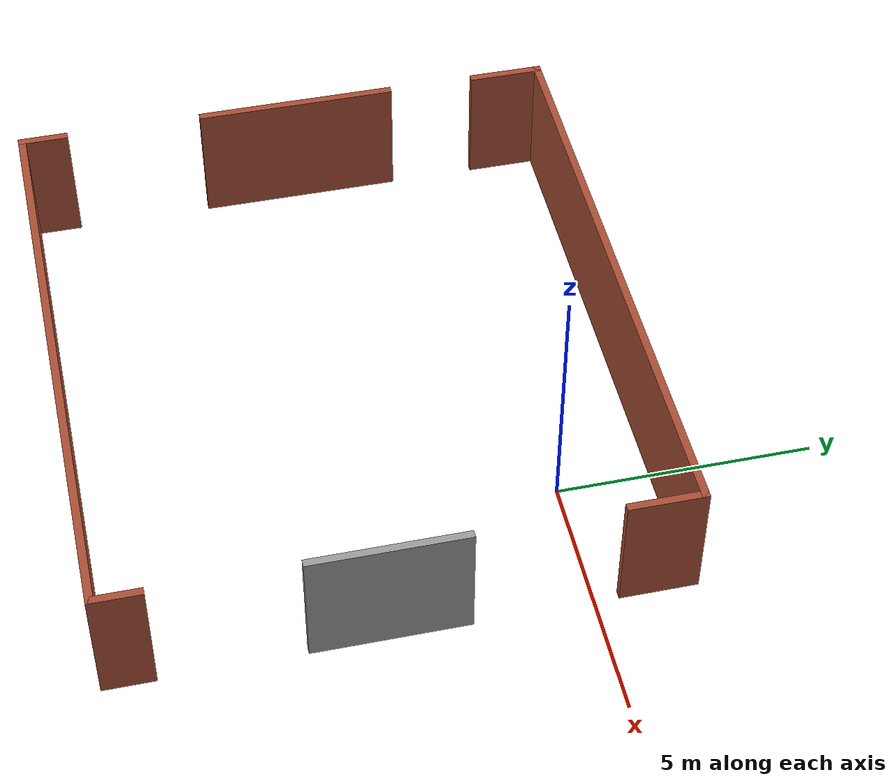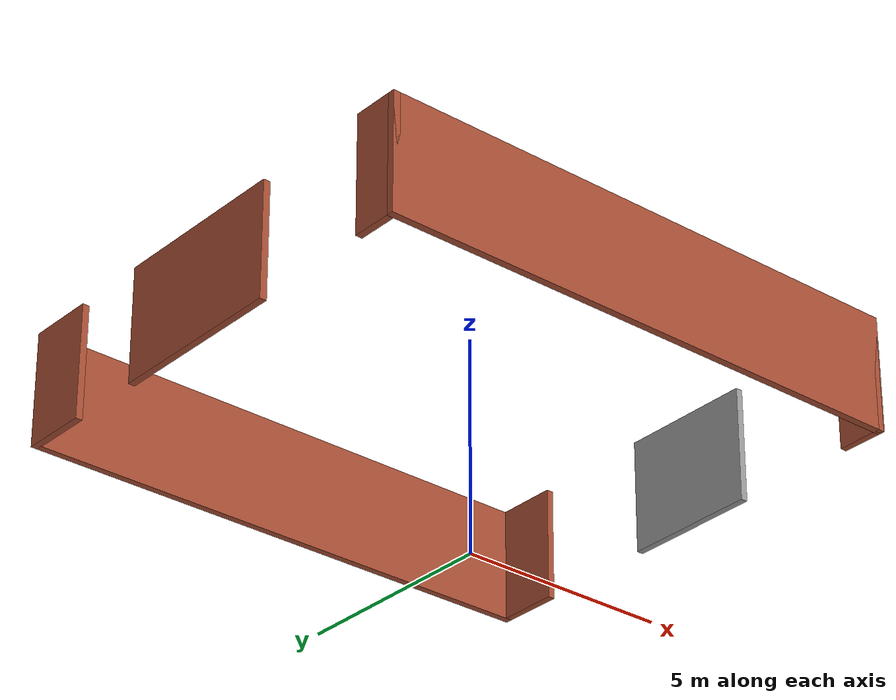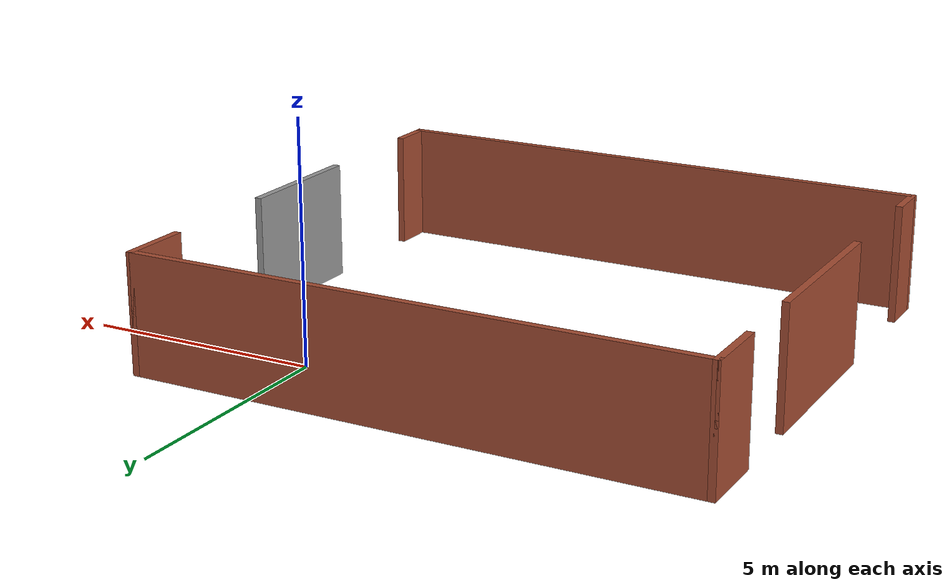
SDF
<?xml version='1.0'?>
<sdf version='1.7'>
  <model name='little_room_doors'>
    <pose>-3.33018 -3.48951 0 0 -0 0</pose>
    <link name='Wall_1'>
      <collision name='Wall_1_Collision'>
        <geometry>
          <box>
            <size>12 0.15 2.5</size>
          </box>
        </geometry>
        <pose>0 0 1.25 0 -0 0</pose>
      </collision>
      <visual name='Wall_1_Visual'>
        <pose>0 0 1.25 0 -0 0</pose>
        <geometry>
          <box>
            <size>12 0.15 2.5</size>
          </box>
        </geometry>
        <material>
          <script>
            <uri>file://media/materials/scripts/gazebo.material</uri>
            <name>Gazebo/Bricks</name>
          </script>
          <ambient>1 1 1 1</ambient>
        </material>
        <meta>
          <layer>0</layer>
        </meta>
      </visual>
      <pose>0 -5.375 0 0 -0 0</pose>
    </link>
    <link name='Wall_11'>
      <collision name='Wall_11_Collision'>
        <geometry>
          <box>
            <size>4 0.15 2.5</size>
          </box>
        </geometry>
        <pose>0 0 1.25 0 -0 0</pose>
      </collision>
      <visual name='Wall_11_Visual'>
        <pose>0 0 1.25 0 -0 0</pose>
        <geometry>
          <box>
            <size>4 0.15 2.5</size>
          </box>
        </geometry>
        <material>
          <script>
            <uri>file://media/materials/scripts/gazebo.material</uri>
            <name>Gazebo/Bricks</name>
          </script>
          <ambient>1 1 1 1</ambient>
        </material>
        <meta>
          <layer>0</layer>
        </meta>
      </visual>
      <pose>-5.925 0.25 0 0 -0 1.5708</pose>
    </link>
    <link name='Wall_14'>
      <collision name='Wall_14_Collision'>
        <geometry>
          <box>
            <size>1.5 0.15 2.5</size>
          </box>
        </geometry>
        <pose>0 0 1.25 0 -0 0</pose>
      </collision>
      <visual name='Wall_14_Visual'>
        <pose>0 0 1.25 0 -0 0</pose>
        <geometry>
          <box>
            <size>1.5 0.15 2.5</size>
          </box>
        </geometry>
        <material>
          <script>
            <uri>file://media/materials/scripts/gazebo.material</uri>
            <name>Gazebo/Bricks</name>
          </script>
          <ambient>1 1 1 1</ambient>
        </material>
        <meta>
          <layer>0</layer>
        </meta>
      </visual>
      <pose>-5.925 4.7 0 0 -0 1.5708</pose>
    </link>
    <link name='Wall_15'>
      <collision name='Wall_15_Collision'>
        <geometry>
          <box>
            <size>12 0.15 2.5</size>
          </box>
        </geometry>
        <pose>0 0 1.25 0 -0 0</pose>
      </collision>
      <visual name='Wall_15_Visual'>
        <pose>0 0 1.25 0 -0 0</pose>
        <geometry>
          <box>
            <size>12 0.15 2.5</size>
          </box>
        </geometry>
        <material>
          <script>
            <uri>file://media/materials/scripts/gazebo.material</uri>
            <name>Gazebo/Bricks</name>
          </script>
          <ambient>1 1 1 1</ambient>
        </material>
        <meta>
          <layer>0</layer>
        </meta>
      </visual>
      <pose>0 5.375 0 0 -0 0</pose>
    </link>
    <link name='Wall_18'>
      <collision name='Wall_18_Collision'>
        <geometry>
          <box>
            <size>1.5 0.15 2.5</size>
          </box>
        </geometry>
        <pose>0 0 1.25 0 -0 0</pose>
      </collision>
      <visual name='Wall_18_Visual'>
        <pose>0 0 1.25 0 -0 0</pose>
        <geometry>
          <box>
            <size>1.5 0.15 2.5</size>
          </box>
        </geometry>
        <material>
          <script>
            <uri>file://media/materials/scripts/gazebo.material</uri>
            <name>Gazebo/Bricks</name>
          </script>
          <ambient>1 1 1 1</ambient>
        </material>
        <meta>
          <layer>0</layer>
        </meta>
      </visual>
      <pose>5.925 4.7 0 0 -0 -1.5708</pose>
    </link>
    <link name='Wall_3'>
      <collision name='Wall_3_Collision'>
        <geometry>
          <box>
            <size>1 0.15 2.5</size>
          </box>
        </geometry>
        <pose>0 0 1.25 0 -0 0</pose>
      </collision>
      <visual name='Wall_3_Visual'>
        <pose>0 0 1.25 0 -0 0</pose>
        <geometry>
          <box>
            <size>1 0.15 2.5</size>
          </box>
        </geometry>
        <material>
          <script>
            <uri>file://media/materials/scripts/gazebo.material</uri>
            <name>Gazebo/Bricks</name>
          </script>
          <ambient>1 1 1 1</ambient>
        </material>
        <meta>
          <layer>0</layer>
        </meta>
      </visual>
      <pose>5.925 -4.95 0 0 -0 1.5708</pose>
    </link>
    <link name='Wall_7'>
      <collision name='Wall_7_Collision'>
        <geometry>
          <box>
            <size>3 0.15 2.5</size>
          </box>
        </geometry>
        <pose>0 0 1.25 0 -0 0</pose>
      </collision>
      <visual name='Wall_7_Visual'>
        <pose>0 0 1.25 0 -0 0</pose>
        <geometry>
          <box>
            <size>3 0.15 2.5</size>
          </box>
        </geometry>
        <material>
          <script>
            <uri>file://media/materials/scripts/gazebo.material</uri>
            <name>Gazebo/Grey</name>
          </script>
          <ambient>1 1 1 1</ambient>
        </material>
        <meta>
          <layer>0</layer>
        </meta>
      </visual>
      <pose>5.925 -0.25 0 0 -0 1.5708</pose>
    </link>
    <link name='Wall_9'>
      <collision name='Wall_9_Collision'>
        <geometry>
          <box>
            <size>1 0.15 2.5</size>
          </box>
        </geometry>
        <pose>0 0 1.25 0 -0 0</pose>
      </collision>
      <visual name='Wall_9_Visual'>
        <pose>0 0 1.25 0 -0 0</pose>
        <geometry>
          <box>
            <size>1 0.15 2.5</size>
          </box>
        </geometry>
        <material>
          <script>
            <uri>file://media/materials/scripts/gazebo.material</uri>
            <name>Gazebo/Bricks</name>
          </script>
          <ambient>1 1 1 1</ambient>
        </material>
        <meta>
          <layer>0</layer>
        </meta>
      </visual>
      <pose>-5.925 -4.95 0 0 -0 1.5708</pose>
    </link>
    <static>1</static>
  </model>
</sdf>
